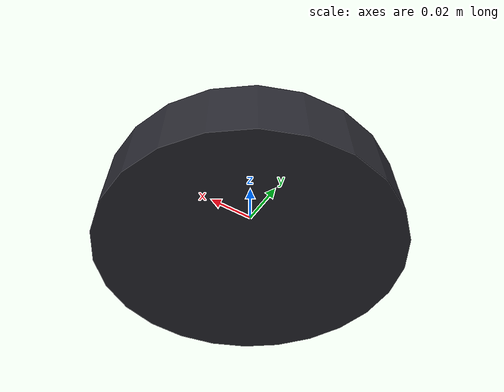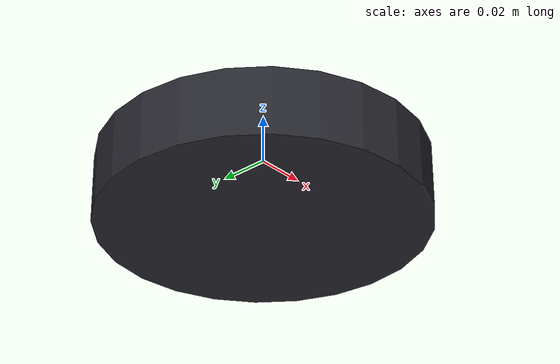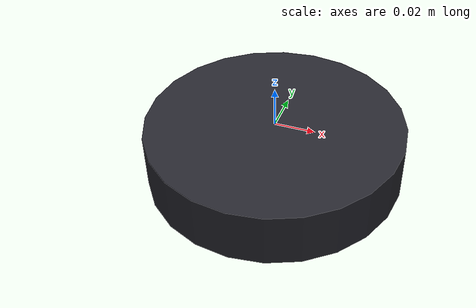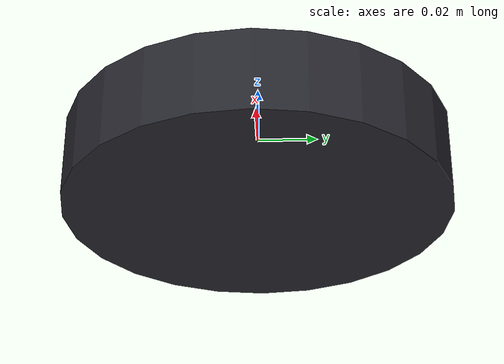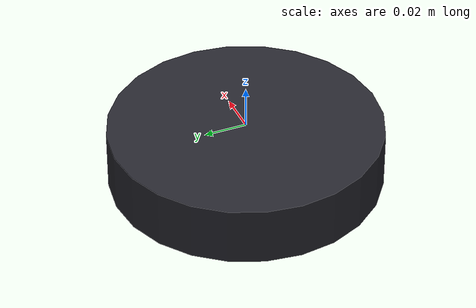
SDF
<?xml version="1.0" ?>
<sdf version="1.9">
  <model name="waterlinked_dvl">

    <link name="dvl_link">
      <inertial>
        <!-- Water Linked A50 datasheet: 170 g in air, 105 g submerged.
             https://docs.waterlinked.com/dvl/dvl-a50/ -->
        <mass>0.17</mass>
        <inertia>
          <ixx>0.00025</ixx><iyy>0.00025</iyy><izz>0.0004</izz>
          <ixy>0</ixy><ixz>0</ixz><iyz>0</iyz>
        </inertia>
      </inertial>

      <collision name="displacement">
        <pose>0 0 -0.014 0 0 0</pose>
        <geometry>
          <cylinder><radius>0.0645</radius><length>0.004973</length></cylinder>
        </geometry>
      </collision>

      <!-- Approximate envelope only; not a dimensionally accurate A50. -->
      <visual name="body">
        <pose>0 0 -0.014 0 0 0</pose>
        <geometry>
          <cylinder><radius>0.0645</radius><length>0.028</length></cylinder>
        </geometry>
        <material>
          <ambient>0.1 0.1 0.12 1</ambient>
          <diffuse>0.15 0.15 0.18 1</diffuse>
        </material>
      </visual>

      <sensor name="dvl" type="custom" gz:type="dvl">
        <always_on>1</always_on>
        <update_rate>10</update_rate>
        <topic>dvl/velocity</topic>

        <gz:dvl>
          <type>phased_array</type>
          <arrangement degrees="true">
            <beam id="1">
              <aperture>2</aperture><rotation>45</rotation><tilt>30</tilt>
            </beam>
            <beam>
              <aperture>2</aperture><rotation>135</rotation><tilt>30</tilt>
            </beam>
            <beam>
              <aperture>2</aperture><rotation>-45</rotation><tilt>30</tilt>
            </beam>
            <beam>
              <aperture>2</aperture><rotation>-135</rotation><tilt>30</tilt>
            </beam>
          </arrangement>

          <tracking>
            <bottom_mode>
              <when>best</when>
              <noise type="gaussian">
                <stddev>0.002</stddev>
              </noise>
              <!-- Draws the four beams in the GUI. Handy for checking mount
                   pose and orientation; turn off once satisfied. -->
              <visualize>true</visualize>
            </bottom_mode>
          </tracking>

          <resolution>0.01</resolution>
          <maximum_range>50.</maximum_range>
          <minimum_range>0.05</minimum_range>

          <!-- ENU to SFM, verbatim from Gazebo's shipped dvl_world.sdf -->
          <reference_frame>0 0 0 0 0 -1.570796</reference_frame>
        </gz:dvl>
      </sensor>
    </link>

  </model>
</sdf>
